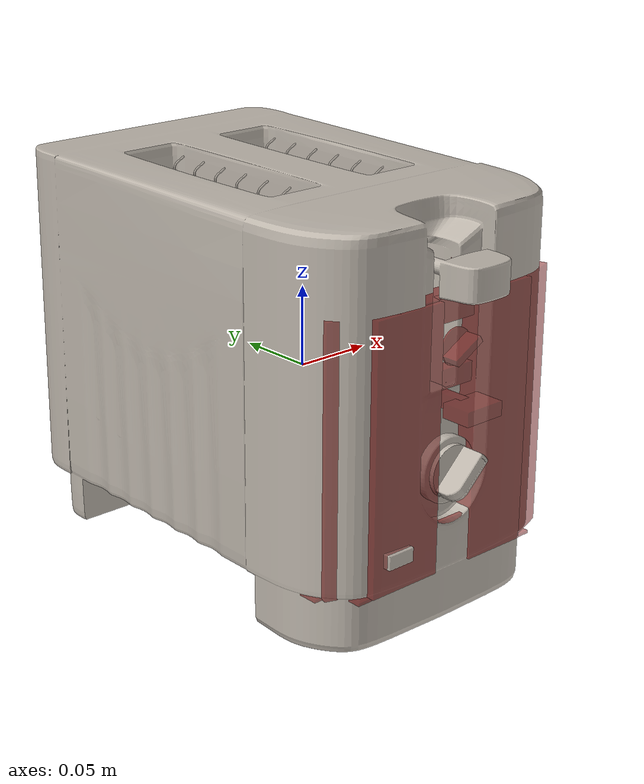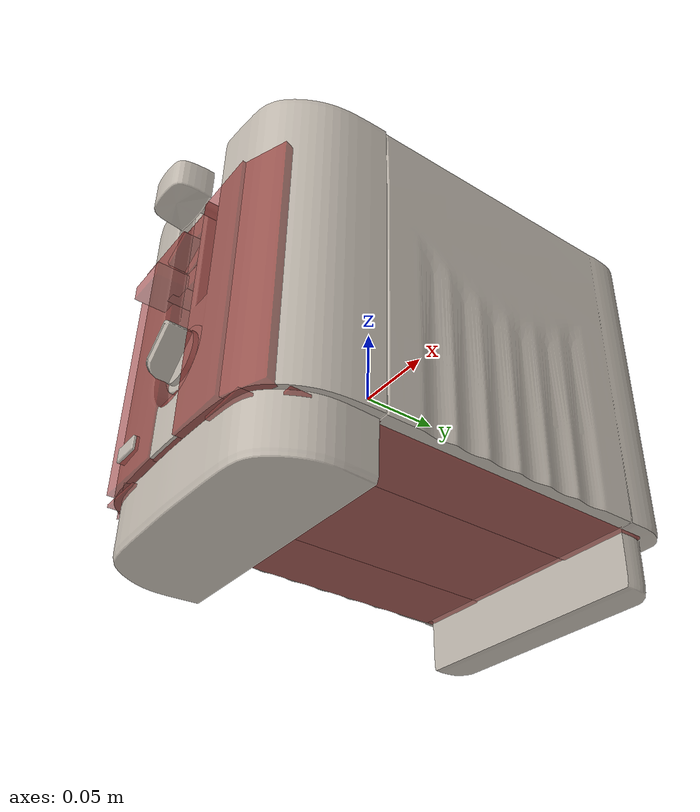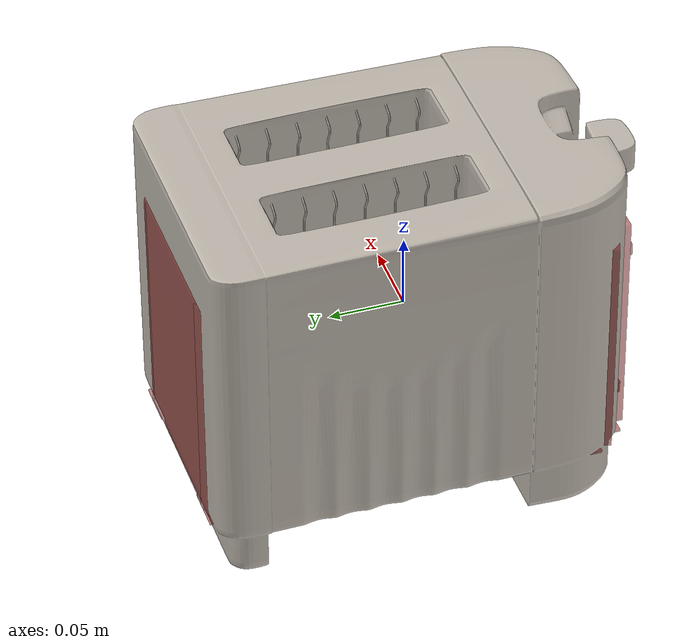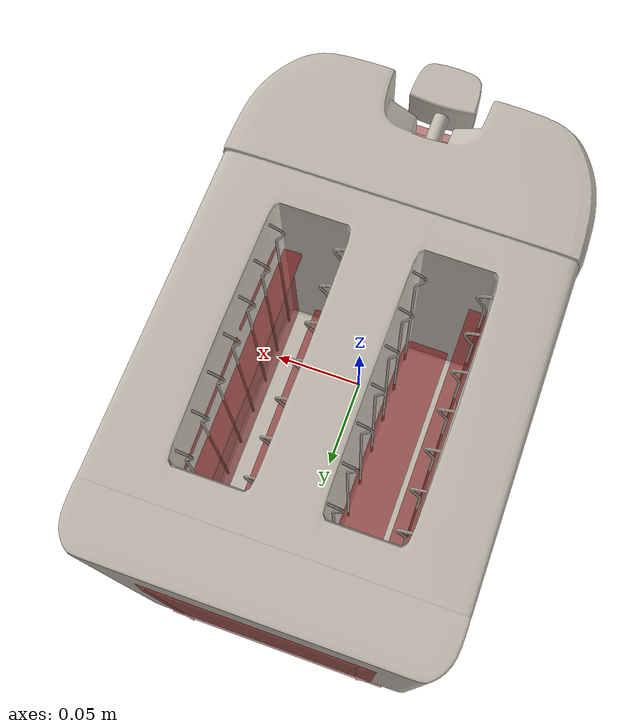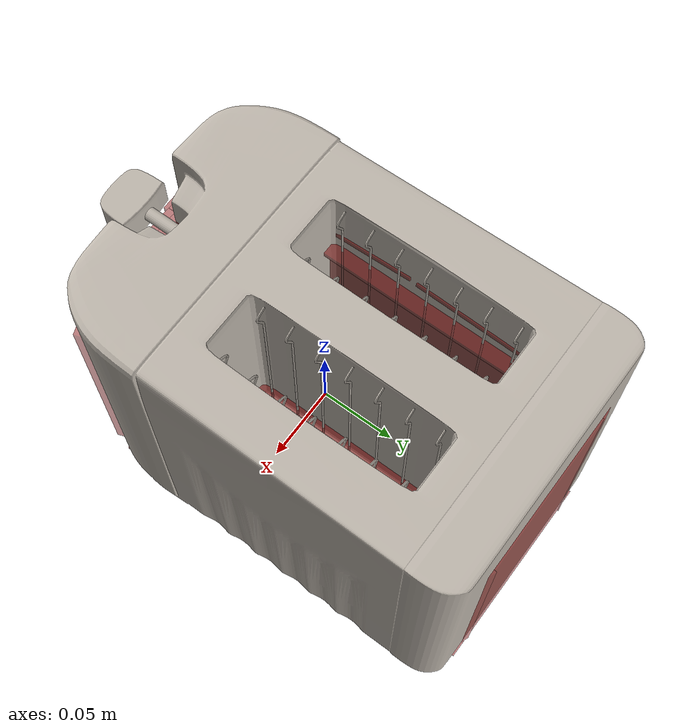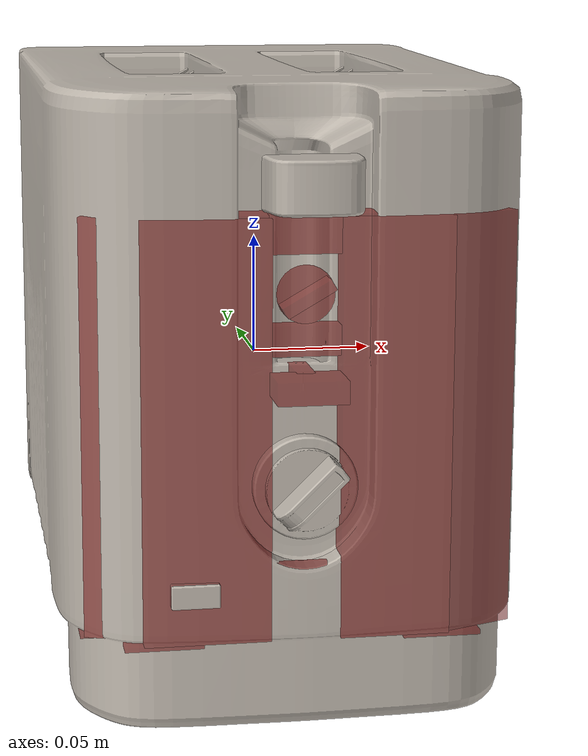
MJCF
<?xml version='1.0' encoding='UTF-8'?>
<mujoco model="model">
  <option timestep="0.002" gravity="0.0 0.0 -9.81"/>
  <compiler angle="radian"/>
  <asset>
    <mesh file="visuals/button_cancel.obj" name="button_cancel_vis"/>
    <mesh file="visuals/knob_doneness.obj" name="knob_doneness_vis"/>
    <mesh file="visuals/lever.obj" name="lever_vis"/>
    <mesh file="visuals/Body001.obj" name="Body001_vis"/>
    <mesh file="visuals/Body002.obj" name="Body002_vis"/>
    <texture file="visuals/T_BC001.png" name="Body001_material" type="2d"/>
    <material name="Body001_material" rgba="1 1 1 1.0" texture="Body001_material" shininess="0.5" specular="0.33333333333333337"/>
    <texture file="visuals/T_BC001.png" name="button_cancel_material" type="2d"/>
    <material name="button_cancel_material" rgba="1 1 1 1.0" texture="button_cancel_material" shininess="0.5" specular="0.33333333333333337"/>
    <texture file="visuals/T_BC001.png" name="knob_doneness_material" type="2d"/>
    <material name="knob_doneness_material" rgba="1 1 1 1.0" texture="knob_doneness_material" shininess="0.5" specular="0.33333333333333337"/>
    <texture file="visuals/T_BC001.png" name="lever_material" type="2d"/>
    <material name="lever_material" rgba="1 1 1 1.0" texture="lever_material" shininess="0.5" specular="0.33333333333333337"/>
    <texture file="visuals/T_BC001.png" name="Body002_material" type="2d"/>
    <material name="Body002_material" rgba="1 1 1 1.0" texture="Body002_material" shininess="0.5" specular="8"/>
  </asset>
  <default>
    <default class="visual">
      <geom conaffinity="0" contype="0" group="1" type="mesh"/>
    </default>
    <default class="collision">
      <geom group="0" rgba="0.5 0 0 0.5" density="1.0" solref="0.004 1" solimp="0.998 0.998 0.001"/>
    </default>
    <default class="spawn">
      <geom group="0" rgba="1 1 1 0.5" contype="0" conaffinity="0"/>
      <site group="0" rgba="1 1 1 0.5"/>
    </default>
    <default class="region">
      <geom group="1" conaffinity="0" contype="0" rgba="0 1 0 0" mass="0"/>
    </default>
  </default>
  <worldbody>
    <body>
      <body name="object">
        <geom mesh="Body001_vis" type="mesh" solimp="0.998 0.998 0.001" solref="0.001 1" friction="0.95 0.3 0.1" class="visual" material="Body001_material"/>
        <geom type="box" pos="0.00000000 0.02812863 0.06888105" size="0.008032111451029778 0.07688912749290466 0.001670788275077939" quat="1.0 0.0 0.0 0.0" class="collision"/>
        <geom type="box" pos="-0.06187586 0.01373008 -0.08810503" size="0.022901631891727448 0.12074839323759079 0.0008622081368230283" quat="1.0 0.0 0.0 0.0" class="collision"/>
        <geom type="box" pos="0.06159927 0.01373008 -0.08810503" size="0.022901631891727448 0.12074839323759079 0.0008622081368230283" quat="1.0 0.0 0.0 0.0" class="collision"/>
        <geom type="box" pos="-0.05414282 -0.11599326 -0.08810503" size="0.015168588608503342 0.009702183306217194 0.0008622081368230283" quat="1.0 0.0 0.0 0.0" class="collision"/>
        <geom type="box" pos="0.05386623 -0.11599326 -0.08810503" size="0.015168588608503342 0.009702222421765327 0.0008622081368230283" quat="1.0 0.0 0.0 0.0" class="collision"/>
        <geom type="box" pos="-0.05414282 0.14386451 -0.08810503" size="0.015168588608503342 0.009702262468636036 0.0008622081368230283" quat="1.0 0.0 0.0 0.0" class="collision"/>
        <geom type="box" pos="0.05386623 0.14386451 -0.08810503" size="0.015168588608503342 0.009702302515506744 0.0008622081368230283" quat="1.0 0.0 0.0 0.0" class="collision"/>
        <geom type="box" pos="0.00000000 0.11232035 0.07116950" size="0.05640172213315964 0.006445706356316805 0.0017447829013690352" quat="1.0 0.0 0.0 0.0" class="collision"/>
        <geom type="box" pos="-0.05228333 0.03129960 0.07116950" size="0.004921027459204197 0.07356937974691391 0.0017449863953515887" quat="1.0 0.0 0.0 0.0" class="collision"/>
        <geom type="box" pos="0.00000000 -0.05082611 0.07116950" size="0.056401994079351425 0.007111263927072287 0.0017448931466788054" quat="1.0 0.0 0.0 0.0" class="collision"/>
        <geom type="box" pos="0.05011058 0.03129960 0.07116950" size="0.004921027459204197 0.07356937974691391 0.0017449863953515887" quat="1.0 0.0 0.0 0.0" class="collision"/>
        <geom type="box" pos="-0.06253329 -0.11699851 -0.00511483" size="0.02110929600894451 0.004208371974527836 0.08089479804039001" quat="3.2779126968307537e-07 0.9848077297210693 -0.17364826798439026 5.1223640440412055e-08" class="collision"/>
        <geom type="box" pos="0.00000000 0.14975020 -0.00291492" size="0.0536440834403038 0.004061260726302862 0.08310192823410034" quat="1.0 0.0 0.0 0.0" class="collision"/>
        <geom type="box" pos="0.08275553 0.01437850 -0.00284379" size="0.002244607312604785 0.11852578073740005 0.08303042501211166" quat="1.0 0.0 0.0 0.0" class="collision"/>
        <geom type="box" pos="-0.08279873 0.01166583 -0.00284379" size="0.002201300347223878 0.11346231400966644 0.0830235630273819" quat="1.0 0.0 0.0 0.0" class="collision"/>
        <geom type="box" pos="0.00000000 0.13348248 0.08141173" size="0.07830600440502167 0.011512511409819126 0.0017449863953515887" quat="1.0 0.0 0.0 0.0" class="collision"/>
        <geom type="box" pos="0.06844322 0.07142322 0.08434711" size="0.011826997622847557 0.0479290746152401 0.0017449863953515887" quat="0.9997583627700806 -0.021982861682772636 0.0 0.0" class="collision"/>
        <geom type="box" pos="0.06844322 -0.02181593 0.08434711" size="0.011826997622847557 0.04091549292206764 0.001744986162520945" quat="0.9992498755455017 0.038726262748241425 0.0 0.0" class="collision"/>
        <geom type="box" pos="-0.06957652 0.07142322 0.08448203" size="0.013211685232818127 0.0479290746152401 0.0017449863953515887" quat="0.9997583627700806 -0.021982861682772636 0.0 0.0" class="collision"/>
        <geom type="box" pos="-0.06957652 -0.02181593 0.08448203" size="0.013211685232818127 0.04091549292206764 0.001744986162520945" quat="0.9992498755455017 0.038726262748241425 0.0 0.0" class="collision"/>
        <geom type="box" pos="0.00000000 -0.06171444 0.01034751" size="0.051608797162771225 0.0023164451122283936 0.06766200065612793" quat="1.0 0.0 0.0 0.0" class="collision"/>
        <geom type="box" pos="0.00000000 0.12186253 0.01034751" size="0.0520927757024765 0.0023164507001638412 0.06765969097614288" quat="1.0 0.0 0.0 0.0" class="collision"/>
        <geom type="box" pos="-0.05505848 0.02643716 0.00141670" size="0.0023621320724487305 0.08860046416521072 0.06318514049053192" quat="1.0 0.0 0.0 0.0" class="collision"/>
        <geom type="box" pos="0.05294426 0.02643716 0.00141670" size="0.0016827423823997378 0.08860046416521072 0.06318929046392441" quat="1.0 0.0 0.0 0.0" class="collision"/>
        <geom type="box" pos="0.00000000 -0.08001872 0.07975054" size="0.0793321505188942 0.016754046082496643 0.0011554593220353127" quat="0.9989802837371826 0.045148566365242004 0.0 0.0" class="collision"/>
        <geom type="box" pos="0.00000000 0.02812863 0.00891243" size="0.00882289744913578 0.07688819617033005 0.05832013487815857" quat="1.0 0.0 0.0 0.0" class="collision"/>
        <geom type="box" pos="0.00000000 0.02812863 -0.05588361" size="0.05322758108377457 0.07689335942268372 0.0021128703374415636" quat="1.0 0.0 0.0 0.0" class="collision"/>
        <geom type="box" pos="0.00000000 -0.11992227 0.07613633" size="0.04834207147359848 0.006797219626605511 0.0011554594384506345" quat="0.9989802837371826 0.045148566365242004 0.0 0.0" class="collision"/>
        <geom type="box" pos="-0.03802229 -0.12257707 -0.00511483" size="0.024315806105732918 0.007228818256407976 0.08089260756969452" quat="1.0 0.0 0.0 0.0" class="collision"/>
        <geom type="box" pos="0.03411929 -0.12257707 -0.00511483" size="0.02110905572772026 0.007563587743788958 0.08089479804039001" quat="1.0 0.0 0.0 0.0" class="collision"/>
        <geom type="box" pos="0.06677577 -0.11939456 -0.00511483" size="0.014526939950883389 0.004208371974527836 0.08089479804039001" quat="2.905034932609851e-07 0.9848077297210693 0.17364826798439026 1.602457047056305e-07" class="collision"/>
        <geom type="box" pos="-0.00090369 -0.12257707 -0.07875997" size="0.013762366957962513 0.00420859269797802 0.0072502512484788895" quat="1.0 0.0 0.0 0.0" class="collision"/>
        <geom type="box" pos="-0.00090369 -0.12257707 0.06959838" size="0.013762366957962513 0.004208572208881378 0.007523436564952135" quat="1.0 0.0 0.0 0.0" class="collision"/>
        <geom type="box" pos="-0.00090369 -0.12257707 0.02940529" size="0.013762366957962513 0.004208331927657127 0.00581328384578228" quat="1.0 0.0 0.0 0.0" class="collision"/>
        <geom type="box" pos="0.00128917 0.01684639 -0.08329246" size="0.04016994684934616 0.1363069713115692 0.004919835366308689" quat="1.0 0.0 0.0 0.0" class="collision"/>
        <geom type="box" pos="-0.07240028 0.14492975 -0.00291492" size="0.007515231147408485 0.002696673385798931 0.08309470117092133" quat="3.664962093807844e-07 0.9396926164627075 0.3420201539993286 -8.910965476616184e-08" class="collision"/>
        <geom type="box" pos="-0.08041835 0.13212012 -0.00291491" size="0.007515229284763336 0.0025246120058000088 0.08309470117092133" quat="3.0550810947715945e-07 0.7372773289680481 0.6755902171134949 -2.2165257007600303e-07" class="collision"/>
        <geom type="box" pos="-0.05956677 0.15056440 -0.00291492" size="0.007515230681747198 0.002696673385798931 0.08309470117092133" quat="4.335793164500501e-07 0.9961947202682495 0.08715561032295227 1.3726585201823127e-08" class="collision"/>
        <geom type="box" pos="0.06281854 0.14878352 -0.00291492" size="0.010265777818858624 0.002511420287191868 0.08309470117092133" quat="3.2779126968307537e-07 0.9848077297210693 -0.17364826798439026 5.1223640440412055e-08" class="collision"/>
        <geom type="box" pos="0.07508238 0.13966287 -0.00291492" size="0.010265777818858624 0.002511420287191868 0.08309470117092133" quat="2.6483115789233125e-07 0.9238795638084412 -0.3826833963394165 1.3056461511951056e-07" class="collision"/>
        <geom type="box" pos="0.04317759 -0.10539116 0.07745245" size="0.031368859112262726 0.007531074807047844 0.0011554593220353127" quat="0.9989802837371826 0.045148566365242004 0.0 0.0" class="collision"/>
        <geom type="box" pos="-0.04453098 -0.10539116 0.07745245" size="0.031368859112262726 0.007531074807047844 0.0011554593220353127" quat="0.9989802837371826 0.045148566365242004 0.0 0.0" class="collision"/>
        <body name="button_cancel">
          <joint axis="0.0 1.0 0.0" pos="-0.00199010 -0.12666394 -0.05934889" limited="true" name="button_cancel_joint" range="0.0 0.001" type="slide" damping="1" frictionloss="1" armature=".01" stiffness="0.05"/>
          <geom mesh="button_cancel_vis" type="mesh" solimp="0.998 0.998 0.001" solref="0.001 1" friction="0.95 0.3 0.1" class="visual" material="button_cancel_material"/>
          <geom class="collision" type="box" pos="-0.00196157 -0.12728285 -0.05944138" size="0.009713463485240936 0.0011874813353642821 0.004099519457668066" quat="1.0 0.0 0.0 0.0" name="button_cancel_main"/>
        </body>
        <body name="knob_doneness">
          <joint axis="0.0 1.0 0.0" pos="-0.00092629 -0.13167814 0.04709270" limited="true" name="knob_doneness_joint" range="0.0 4.206243497306334" type="hinge" damping="0.05" armature="0.001"/>
          <geom mesh="knob_doneness_vis" type="mesh" solimp="0.998 0.998 0.001" solref="0.001 1" friction="0.95 0.3 0.1" class="visual" material="knob_doneness_material"/>
          <geom class="collision" type="box" pos="-0.00109755 -0.13252461 0.04703600" size="0.010387740097939968 0.00513584166765213 0.0022126652766019106" quat="0.9659258127212524 0.0 -0.2588191032409668 0.0" name="knob_doneness_main"/>
          <geom type="cylinder" pos="-0.00078415 -0.12685621 0.04714586" size="0.01103160809725523 0.0005115247913636267" quat="0.7071068286895752 0.7071067690849304 0.0 0.0" class="collision"/>
        </body>
        <body name="lever">
          <joint axis="0.0 0.0 -1.0" pos="-0.00198132 -0.12894419 0.01569093" limited="true" name="lever_joint" range="0.0 0.05" type="slide" damping="1" frictionloss="1" armature=".01" stiffness="2" springref="-0.5"/>
          <geom class="region" name="reg_slotR" type="box" pos="0.026202025 0.030341109999999998 0.07629293000000001" size="0.016173035 0.07427600000000001 0.07599997"/>
          <geom class="region" name="reg_slotL" type="box" pos="-0.029493275 0.030341109999999998 0.07629293000000001" size="0.015557795 0.07427600000000001 0.07599997"/>
          <geom mesh="lever_vis" type="mesh" solimp="0.998 0.998 0.001" solref="0.001 1" friction="0.95 0.3 0.1" class="visual" material="lever_material"/>
          <geom class="collision" type="box" pos="0.02644795 0.03132911 -0.00139306" size="0.013696742244064808 0.07261224836111069 0.0004996926872991025" quat="1.0 0.0 0.0 0.0" name="slotR_floor"/>
          <geom class="collision" type="box" pos="-0.02908955 0.03132911 -0.00139306" size="0.01363889779895544 0.07261279225349426 0.0004997173091396689" quat="1.0 0.0 0.0 0.0" name="slotL_floor"/>
          <geom class="collision" type="box" pos="-0.00207029 -0.14207000 0.01494764" size="0.013215040788054466 0.009389414452016354 0.004341796971857548" quat="1.0 0.0 0.0 0.0" name="lever_handle"/>
          <geom type="box" pos="-0.00207029 -0.12580732 0.01494764" size="0.0035042257513850927 0.010664893314242363 0.0043418253771960735" quat="1.0 0.0 0.0 0.0" class="collision"/>
        </body>
        <body name="Body002">
          <geom mesh="Body002_vis" type="mesh" solimp="0.998 0.998 0.001" solref="0.001 1" friction="0.95 0.3 0.1" class="visual" material="Body002_material"/>
        </body>
        <geom class="region" name="reg_main" type="box" pos="0.0 0.013222365 -4.229999999993961e-06" size="0.08600001 0.141588895 0.089963"/>
      </body>
    </body>
  </worldbody>
  <actuator>
    <motor name="button_cancel_joint_actuator" joint="button_cancel_joint" gear="0.2"/>
    <motor name="knob_doneness_joint_actuator" joint="knob_doneness_joint" gear="5"/>
    <motor name="lever_joint_actuator" joint="lever_joint" gear="1.5"/>
  </actuator>
</mujoco>
